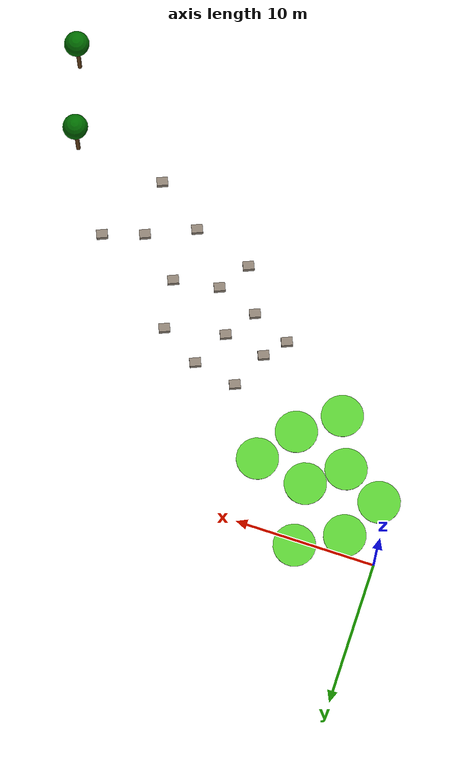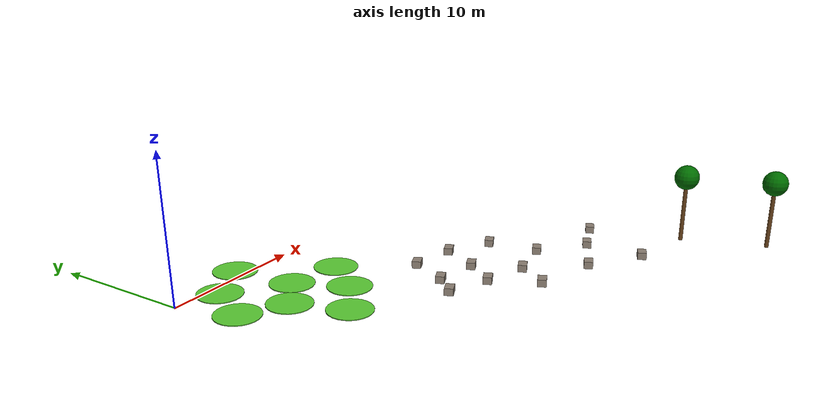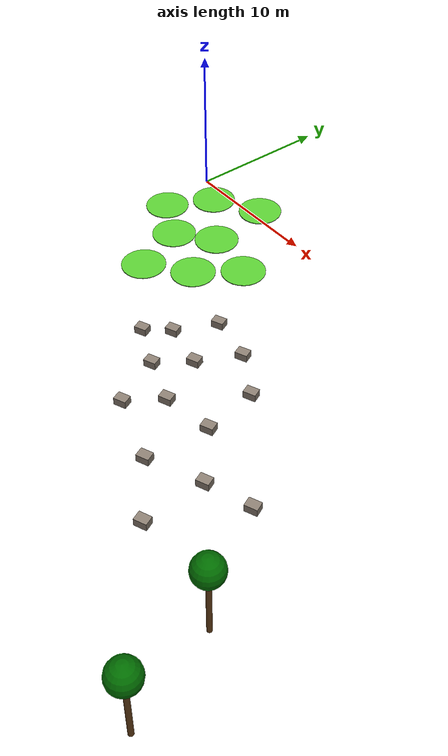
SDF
<sdf version="1.7">
 <world name="default">
  <model name="short_grass_1">
   <pose>2.51598 -1.31049 0.314668 0.011586 0.016684 -0.106154</pose>
   <static>1</static>
   <link name="link">
    <pose>0 0 0.025 0 -0 0</pose>
    <visual name="v">
     <geometry><cylinder><radius>1.5</radius><length>0.05</length></cylinder></geometry>
     <material><ambient>0.35 0.8 0.2 1</ambient><diffuse>0.35 0.8 0.2 1</diffuse></material>
    </visual>
    <collision name="c">
     <geometry><cylinder><radius>0.0</radius><length>0.00</length></cylinder></geometry>
    </collision>
    <inertial>
     <inertia><ixx>1</ixx><ixy>0</ixy><ixz>0</ixz><iyy>1</iyy><iyz>0</iyz><izz>1</izz></inertia>
     <mass>1</mass>
    </inertial>
   </link>
  </model>
  <model name="rock_1">
   <pose>10.5893 -13.1981 0.07774 0 -0 0</pose>
   <static>1</static>
   <link name="link">
    <pose>0 0 0.25 0 -0 0.4</pose>
    <visual name="v">
     <geometry><box><size>0.8 0.6 0.5</size></box></geometry>
     <material><ambient>0.5 0.45 0.4 1</ambient><diffuse>0.55 0.5 0.45 1</diffuse></material>
    </visual>
    <collision name="c"><geometry><box><size>0.8 0.6 0.5</size></box></geometry></collision>
   </link>
  </model>
  <model name="tree_1">
   <pose>31.1148 -28.2337 -0.637937 0 -0 0</pose>
   <static>1</static>
   <link name="trunk">
    <pose>0 0 2 0 -0 0</pose>
    <visual name="v">
     <geometry><cylinder><radius>0.15</radius><length>4</length></cylinder></geometry>
     <material><ambient>0.35 0.2 0.05 1</ambient><diffuse>0.4 0.25 0.1 1</diffuse></material>
    </visual>
    <collision name="c">
     <geometry><cylinder><radius>0.15</radius><length>4</length></cylinder></geometry>
    </collision>
   </link>
   <link name="canopy">
    <pose>0 0 4.9 0 -0 0</pose>
    <visual name="v">
     <geometry><sphere><radius>0.9</radius></sphere></geometry>
     <material><ambient>0 0.38 0 1</ambient><diffuse>0 0.42 0 1</diffuse></material>
    </visual>
    <collision name="c"><geometry><sphere><radius>0.9</radius></sphere></geometry></collision>
   </link>
  </model>
  <model name="short_grass_1_clone">
   <static>1</static>
   <link name="link">
    <pose>0 0 0.025 0 -0 0</pose>
    <visual name="v">
     <geometry><cylinder><radius>1.5</radius><length>0.05</length></cylinder></geometry>
     <material><ambient>0.35 0.8 0.2 1</ambient><diffuse>0.35 0.8 0.2 1</diffuse></material>
    </visual>
    <collision name="c">
     <geometry><cylinder><radius>0.0</radius><length>0.00</length></cylinder></geometry>
    </collision>
    <inertial>
     <inertia><ixx>1</ixx><ixy>0</ixy><ixz>0</ixz><iyy>1</iyy><iyz>0</iyz><izz>1</izz></inertia>
     <mass>1</mass>
    </inertial>
   </link>
   <pose>0.967763 -4.29811 0.299408 0.011252 0.01668 -0.106561</pose>
  </model>
  <model name="short_grass_1_clone_0">
   <static>1</static>
   <link name="link">
    <pose>0 0 0.025 0 -0 0</pose>
    <visual name="v">
     <geometry><cylinder><radius>1.5</radius><length>0.05</length></cylinder></geometry>
     <material><ambient>0.35 0.8 0.2 1</ambient><diffuse>0.35 0.8 0.2 1</diffuse></material>
    </visual>
    <collision name="c">
     <geometry><cylinder><radius>0.0</radius><length>0.00</length></cylinder></geometry>
    </collision>
    <inertial>
     <inertia><ixx>1</ixx><ixy>0</ixy><ixz>0</ixz><iyy>1</iyy><iyz>0</iyz><izz>1</izz></inertia>
     <mass>1</mass>
    </inertial>
   </link>
   <pose>5.62367 0.410366 0.289627 0.011163 0.016637 -0.106146</pose>
  </model>
  <model name="short_grass_1_clone_1">
   <static>1</static>
   <link name="link">
    <pose>0 0 0.025 0 -0 0</pose>
    <visual name="v">
     <geometry><cylinder><radius>1.5</radius><length>0.05</length></cylinder></geometry>
     <material><ambient>0.35 0.8 0.2 1</ambient><diffuse>0.35 0.8 0.2 1</diffuse></material>
    </visual>
    <collision name="c">
     <geometry><cylinder><radius>0.0</radius><length>0.00</length></cylinder></geometry>
    </collision>
    <inertial>
     <inertia><ixx>1</ixx><ixy>0</ixy><ixz>0</ixz><iyy>1</iyy><iyz>0</iyz><izz>1</izz></inertia>
     <mass>1</mass>
    </inertial>
   </link>
   <pose>6.23859 -3.97243 0.223559 0.010926 0.016488 -0.084869</pose>
  </model>
  <model name="short_grass_1_clone_2">
   <static>1</static>
   <link name="link">
    <pose>0 0 0.025 0 -0 0</pose>
    <visual name="v">
     <geometry><cylinder><radius>1.5</radius><length>0.05</length></cylinder></geometry>
     <material><ambient>0.35 0.8 0.2 1</ambient><diffuse>0.35 0.8 0.2 1</diffuse></material>
    </visual>
    <collision name="c">
     <geometry><cylinder><radius>0.0</radius><length>0.00</length></cylinder></geometry>
    </collision>
    <inertial>
     <inertia><ixx>1</ixx><ixy>0</ixy><ixz>0</ixz><iyy>1</iyy><iyz>0</iyz><izz>1</izz></inertia>
     <mass>1</mass>
    </inertial>
   </link>
   <pose>3.86178 -5.8313 0.235844 0.01046 0.017003 -0.133779</pose>
  </model>
  <model name="short_grass_1_clone_4">
   <static>1</static>
   <link name="link">
    <pose>0 0 0.025 0 -0 0</pose>
    <visual name="v">
     <geometry><cylinder><radius>1.5</radius><length>0.05</length></cylinder></geometry>
     <material><ambient>0.35 0.8 0.2 1</ambient><diffuse>0.35 0.8 0.2 1</diffuse></material>
    </visual>
    <collision name="c">
     <geometry><cylinder><radius>0.0</radius><length>0.00</length></cylinder></geometry>
    </collision>
    <inertial>
     <inertia><ixx>1</ixx><ixy>0</ixy><ixz>0</ixz><iyy>1</iyy><iyz>0</iyz><izz>1</izz></inertia>
     <mass>1</mass>
    </inertial>
   </link>
   <pose>7.97037 -7.30265 0.152826 0.010801 0.016703 -0.106155</pose>
  </model>
  <model name="short_grass_1_clone_5">
   <static>1</static>
   <link name="link">
    <pose>0 0 0.025 0 -0 0</pose>
    <visual name="v">
     <geometry><cylinder><radius>1.5</radius><length>0.05</length></cylinder></geometry>
     <material><ambient>0.35 0.8 0.2 1</ambient><diffuse>0.35 0.8 0.2 1</diffuse></material>
    </visual>
    <collision name="c">
     <geometry><cylinder><radius>0.0</radius><length>0.00</length></cylinder></geometry>
    </collision>
    <inertial>
     <inertia><ixx>1</ixx><ixy>0</ixy><ixz>0</ixz><iyy>1</iyy><iyz>0</iyz><izz>1</izz></inertia>
     <mass>1</mass>
    </inertial>
   </link>
   <pose>5.26516 -9.38146 0.169864 0.010581 0.016714 -0.106127</pose>
  </model>
  <model name="short_grass_1_clone_4_clone">
   <static>1</static>
   <link name="link">
    <pose>0 0 0.025 0 -0 0</pose>
    <visual name="v">
     <geometry><cylinder><radius>1.5</radius><length>0.05</length></cylinder></geometry>
     <material><ambient>0.35 0.8 0.2 1</ambient><diffuse>0.35 0.8 0.2 1</diffuse></material>
    </visual>
    <collision name="c">
     <geometry><cylinder><radius>0.0</radius><length>0.00</length></cylinder></geometry>
    </collision>
    <inertial>
     <inertia><ixx>1</ixx><ixy>0</ixy><ixz>0</ixz><iyy>1</iyy><iyz>0</iyz><izz>1</izz></inertia>
     <mass>1</mass>
    </inertial>
   </link>
   <pose>9.95587 -4.63736 0.156142 0.011061 0.016536 -0.106136</pose>
  </model>
  <model name="rock_1_clone">
   <static>1</static>
   <link name="link">
    <pose>0 0 0.25 0 -0 0.4</pose>
    <visual name="v">
     <geometry><box><size>0.8 0.6 0.5</size></box></geometry>
     <material><ambient>0.5 0.45 0.4 1</ambient><diffuse>0.55 0.5 0.45 1</diffuse></material>
    </visual>
    <collision name="c"><geometry><box><size>0.8 0.6 0.5</size></box></geometry></collision>
   </link>
   <pose>11.8453 -11.773 0.07774 0 -0 0</pose>
  </model>
  <model name="rock_1_clone_0">
   <static>1</static>
   <link name="link">
    <pose>0 0 0.25 0 -0 0.4</pose>
    <visual name="v">
     <geometry><box><size>0.8 0.6 0.5</size></box></geometry>
     <material><ambient>0.5 0.45 0.4 1</ambient><diffuse>0.55 0.5 0.45 1</diffuse></material>
    </visual>
    <collision name="c"><geometry><box><size>0.8 0.6 0.5</size></box></geometry></collision>
   </link>
   <pose>13.3497 -14.4452 0.07774 0 -0 0</pose>
  </model>
  <model name="rock_1_clone_1">
   <static>1</static>
   <link name="link">
    <pose>0 0 0.25 0 -0 0.4</pose>
    <visual name="v">
     <geometry><box><size>0.8 0.6 0.5</size></box></geometry>
     <material><ambient>0.5 0.45 0.4 1</ambient><diffuse>0.55 0.5 0.45 1</diffuse></material>
    </visual>
    <collision name="c"><geometry><box><size>0.8 0.6 0.5</size></box></geometry></collision>
   </link>
   <pose>13.102 -9.15016 0.07774 0 -0 0</pose>
  </model>
  <model name="rock_1_clone_2">
   <static>1</static>
   <link name="link">
    <pose>0 0 0.25 0 -0 0.4</pose>
    <visual name="v">
     <geometry><box><size>0.8 0.6 0.5</size></box></geometry>
     <material><ambient>0.5 0.45 0.4 1</ambient><diffuse>0.55 0.5 0.45 1</diffuse></material>
    </visual>
    <collision name="c"><geometry><box><size>0.8 0.6 0.5</size></box></geometry></collision>
   </link>
   <pose>14.8404 -12.374 0.07774 0 -0 0</pose>
  </model>
  <model name="rock_1_clone_3">
   <static>1</static>
   <link name="link">
    <pose>0 0 0.25 0 -0 0.4</pose>
    <visual name="v">
     <geometry><box><size>0.8 0.6 0.5</size></box></geometry>
     <material><ambient>0.5 0.45 0.4 1</ambient><diffuse>0.55 0.5 0.45 1</diffuse></material>
    </visual>
    <collision name="c"><geometry><box><size>0.8 0.6 0.5</size></box></geometry></collision>
   </link>
   <pose>16.2311 -9.77814 0.07774 0 -0 0</pose>
  </model>
  <model name="rock_1_clone_4">
   <static>1</static>
   <link name="link">
    <pose>0 0 0.25 0 -0 0.4</pose>
    <visual name="v">
     <geometry><box><size>0.8 0.6 0.5</size></box></geometry>
     <material><ambient>0.5 0.45 0.4 1</ambient><diffuse>0.55 0.5 0.45 1</diffuse></material>
    </visual>
    <collision name="c"><geometry><box><size>0.8 0.6 0.5</size></box></geometry></collision>
   </link>
   <pose>16.3203 -15.4916 0.07774 0 -0 0</pose>
  </model>
  <model name="rock_1_clone_5">
   <static>1</static>
   <link name="link">
    <pose>0 0 0.25 0 -0 0.4</pose>
    <visual name="v">
     <geometry><box><size>0.8 0.6 0.5</size></box></geometry>
     <material><ambient>0.5 0.45 0.4 1</ambient><diffuse>0.55 0.5 0.45 1</diffuse></material>
    </visual>
    <collision name="c"><geometry><box><size>0.8 0.6 0.5</size></box></geometry></collision>
   </link>
   <pose>14.8663 -17.6073 0.07774 0 -0 0</pose>
  </model>
  <model name="rock_1_clone_6">
   <static>1</static>
   <link name="link">
    <pose>0 0 0.25 0 -0 0.4</pose>
    <visual name="v">
     <geometry><box><size>0.8 0.6 0.5</size></box></geometry>
     <material><ambient>0.5 0.45 0.4 1</ambient><diffuse>0.55 0.5 0.45 1</diffuse></material>
    </visual>
    <collision name="c"><geometry><box><size>0.8 0.6 0.5</size></box></geometry></collision>
   </link>
   <pose>19.5967 -14.9834 0.07774 0 -0 0</pose>
  </model>
  <model name="rock_1_clone_7">
   <static>1</static>
   <link name="link">
    <pose>0 0 0.25 0 -0 0.4</pose>
    <visual name="v">
     <geometry><box><size>0.8 0.6 0.5</size></box></geometry>
     <material><ambient>0.5 0.45 0.4 1</ambient><diffuse>0.55 0.5 0.45 1</diffuse></material>
    </visual>
    <collision name="c"><geometry><box><size>0.8 0.6 0.5</size></box></geometry></collision>
   </link>
   <pose>19.0753 -11.4653 0.07774 0 -0 0</pose>
  </model>
  <model name="rock_1_clone_8">
   <static>1</static>
   <link name="link">
    <pose>0 0 0.25 0 -0 0.4</pose>
    <visual name="v">
     <geometry><box><size>0.8 0.6 0.5</size></box></geometry>
     <material><ambient>0.5 0.45 0.4 1</ambient><diffuse>0.55 0.5 0.45 1</diffuse></material>
    </visual>
    <collision name="c"><geometry><box><size>0.8 0.6 0.5</size></box></geometry></collision>
   </link>
   <pose>19.1624 -19.0386 0.07774 0 -0 0</pose>
  </model>
  <model name="rock_1_clone_9">
   <static>1</static>
   <link name="link">
    <pose>0 0 0.25 0 -0 0.4</pose>
    <visual name="v">
     <geometry><box><size>0.8 0.6 0.5</size></box></geometry>
     <material><ambient>0.5 0.45 0.4 1</ambient><diffuse>0.55 0.5 0.45 1</diffuse></material>
    </visual>
    <collision name="c"><geometry><box><size>0.8 0.6 0.5</size></box></geometry></collision>
   </link>
   <pose>22.555 -17.5409 0.07774 0 -0 0</pose>
  </model>
  <model name="rock_1_clone_10">
   <static>1</static>
   <link name="link">
    <pose>0 0 0.25 0 -0 0.4</pose>
    <visual name="v">
     <geometry><box><size>0.8 0.6 0.5</size></box></geometry>
     <material><ambient>0.5 0.45 0.4 1</ambient><diffuse>0.55 0.5 0.45 1</diffuse></material>
    </visual>
    <collision name="c"><geometry><box><size>0.8 0.6 0.5</size></box></geometry></collision>
   </link>
   <pose>22.6102 -21.5807 0.07774 0 -0 0</pose>
  </model>
  <model name="rock_1_clone_11">
   <static>1</static>
   <link name="link">
    <pose>0 0 0.25 0 -0 0.4</pose>
    <visual name="v">
     <geometry><box><size>0.8 0.6 0.5</size></box></geometry>
     <material><ambient>0.5 0.45 0.4 1</ambient><diffuse>0.55 0.5 0.45 1</diffuse></material>
    </visual>
    <collision name="c"><geometry><box><size>0.8 0.6 0.5</size></box></geometry></collision>
   </link>
   <pose>25.4374 -16.5841 0.07774 0 -0 0</pose>
  </model>
  <model name="tree_1_clone">
   <static>1</static>
   <link name="trunk">
    <pose>0 0 2 0 -0 0</pose>
    <visual name="v">
     <geometry><cylinder><radius>0.15</radius><length>4</length></cylinder></geometry>
     <material><ambient>0.35 0.2 0.05 1</ambient><diffuse>0.4 0.25 0.1 1</diffuse></material>
    </visual>
    <collision name="c">
     <geometry><cylinder><radius>0.15</radius><length>4</length></cylinder></geometry>
    </collision>
   </link>
   <link name="canopy">
    <pose>0 0 4.9 0 -0 0</pose>
    <visual name="v">
     <geometry><sphere><radius>0.9</radius></sphere></geometry>
     <material><ambient>0 0.38 0 1</ambient><diffuse>0 0.42 0 1</diffuse></material>
    </visual>
    <collision name="c"><geometry><sphere><radius>0.9</radius></sphere></geometry></collision>
   </link>
   <pose>29.2328 -22.3963 -0.637937 0 -0 0</pose>
  </model>
 </world>
</sdf>
